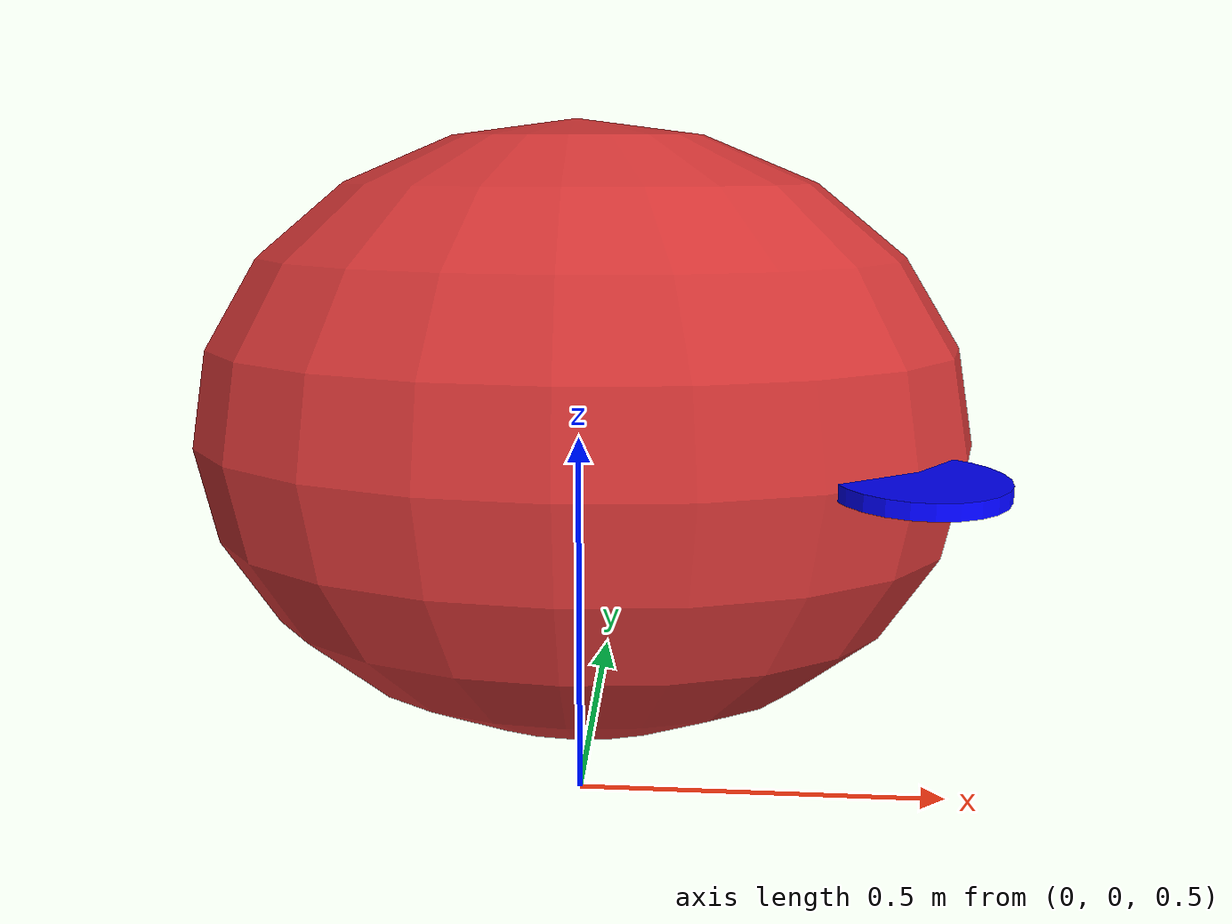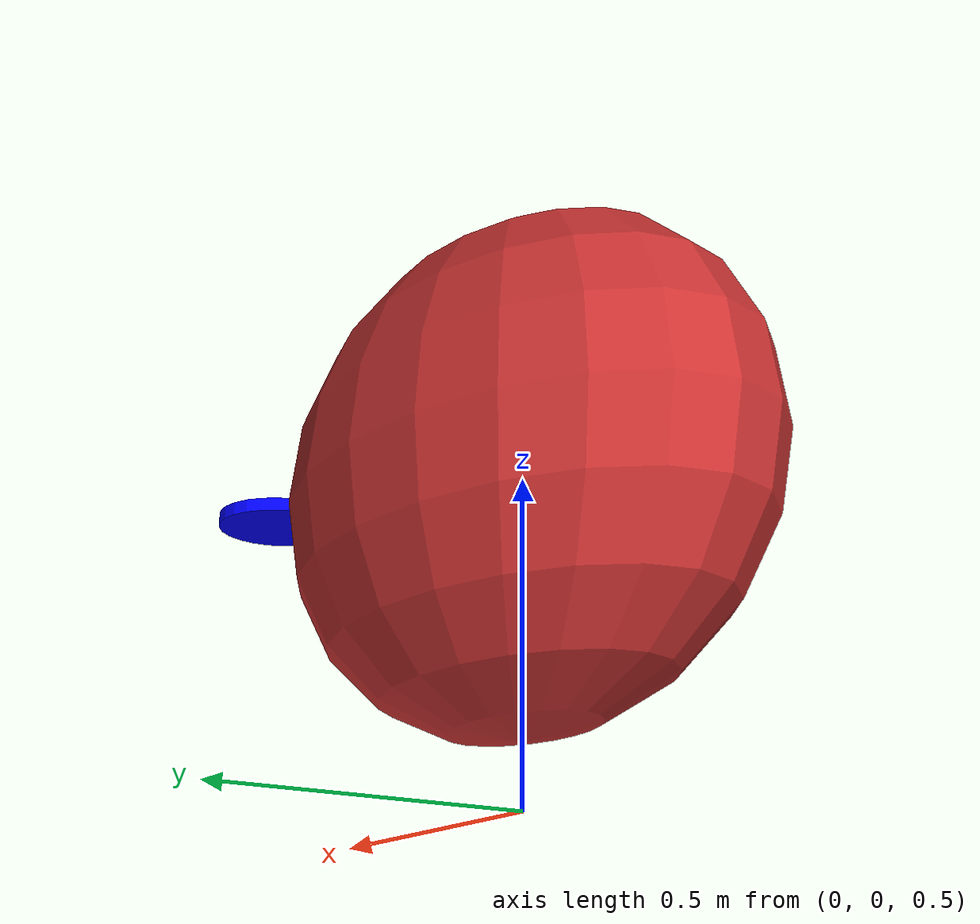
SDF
<?xml version="1.0" ?>
<sdf version="1.6">
  <model name="aerostate">
    <pose>0 0 1 0 0 0</pose>
    <link name="body">
      <inertial>
        <mass>0.3276</mass>
        <inertia>
          <ixx>0.1</ixx>
          <ixy>0</ixy>
          <ixz>0</ixz>
          <iyy>0.1</iyy>
          <iyz>0</iyz>
          <izz>0.1</izz>
        </inertia>
      </inertial>
      <collision name="collision">
        <geometry>
          <sphere>
            <radius>0.4</radius>
          </sphere>
        </geometry>
      </collision>
      <visual name="visual">
        <geometry>
          <ellipsoid>
            <radii>0.5 0.3 0.4</radii>
          </ellipsoid>
        </geometry>
        <material>
          <ambient>0.8 0.2 0.2 1</ambient>
          <diffuse>0.8 0.2 0.2 1</diffuse>
        </material>
      </visual>
      <sensor name="imu_sensor" type="imu">
        <always_on>1</always_on> <!-- Сенсор всегда включен (активен) -->
        <update_rate>100</update_rate> <!-- Частота обновления данных сенсора (Гц) -->
        <visualize>true</visualize> <!-- Визуализация сенсора в Gazebo (отображение оси координат) -->
        <topic>imu</topic> <!-- Топик, на который сенсор публикует данные -->
        <enable_metrics>true</enable_metrics> <!-- Включение метрик производительности сенсора (для отладки) -->
      </sensor>
    </link>
    <link name="camera_link">
    <pose>0 0 -0.2 0 1.57 0</pose>
    <inertial>
        <mass>0.001</mass>
        <inertia>
          <ixx>0.00001</ixx>
          <ixy>0</ixy>
          <ixz>0</ixz>
          <iyy>0.00001</iyy>
          <iyz>0</iyz>
          <izz>0.00001</izz>
        </inertia>
      </inertial>
      <collision name="collision">
        <geometry>
          <box>
            <size>0.05 0.05 0.05</size>
          </box>
        </geometry>
      </collision>
    <sensor name="downward_camera" type="camera">
      <camera>
        <horizontal_fov>1.047</horizontal_fov>
        <image>
          <width>320</width>
          <height>240</height>
        </image>
        <clip>
          <near>0.1</near>
          <far>100</far>
        </clip>
      </camera>
      <always_on>true</always_on>
      <update_rate>30</update_rate>
      <visualize>true</visualize>
      <topic>camera</topic>
    </sensor>
  </link>
  <joint name="camera_joint" type="fixed">
    <parent>body</parent>
    <child>camera_link</child>
  </joint>
    <link name='rotor_0'>  <!-- Правый задний -->
    <pose>0.4 -0.2 0 0 0 0</pose>
    <inertial>
        <mass>0.001</mass>
        <inertia>
          <ixx>0.00001</ixx>
          <ixy>0</ixy>
          <ixz>0</ixz>
          <iyy>0.00001</iyy>
          <iyz>0</iyz>
          <izz>0.00001</izz>
        </inertia>
      </inertial>
      <collision name="collision">
        <geometry>
          <cylinder>
            <radius>0.1</radius>
            <length>0.02</length>
          </cylinder>
        </geometry>
      </collision>
      <visual name="rotor_0_visual">
        <geometry>
          <cylinder>
            <radius>0.1</radius>
            <length>0.02</length>
          </cylinder>
        </geometry>
        <material>
          <ambient>0 0 1 1</ambient>
        </material>
      </visual>
    </link>
    <joint name="rotor_0_joint" type="revolute">
      <parent>body</parent>
      <child>rotor_0</child>
      <axis>
        <xyz>0 1 0</xyz>
        <limit>
          <lower>-1e+16</lower>
          <upper>1e+16</upper>
        </limit>
      </axis>
    </joint>
    <link name='rotor_1'>  <!-- Левый задний -->
    <pose>0.4 0.2 0 0 0 0</pose>
      <inertial>
        <mass>0.001</mass>
        <inertia>
          <ixx>0.00001</ixx>
          <ixy>0</ixy>
          <ixz>0</ixz>
          <iyy>0.00001</iyy>
          <iyz>0</iyz>
          <izz>0.00001</izz>
        </inertia>
      </inertial>
      <collision name="collision">
        <geometry>
          <cylinder>
            <radius>0.1</radius>
            <length>0.02</length>
          </cylinder>
        </geometry>
      </collision>
      <visual name="rotor_1_visual">
        <geometry>
          <cylinder>
            <radius>0.1</radius>
            <length>0.02</length>
          </cylinder>
        </geometry>
        <material>
          <ambient>0 0 1 1</ambient>
        </material>
      </visual>
    </link>
    <joint name="rotor_1_joint" type="revolute">
      <parent>body</parent>
      <child>rotor_1</child>
      <axis>
        <xyz>0 1 0</xyz>
        <limit>
          <lower>-1e+16</lower>
          <upper>1e+16</upper>
        </limit>
      </axis>
    </joint>
	<link name='rotor_U'>  <!-- Верхний -->
    <pose>0 0 0.3 0 0 0</pose>
      <inertial>
        <mass>0.001</mass>
        <inertia>
          <ixx>0.00001</ixx>
          <ixy>0</ixy>
          <ixz>0</ixz>
          <iyy>0.00001</iyy>
          <iyz>0</iyz>
          <izz>0.00001</izz>
        </inertia>
      </inertial>
      <collision name="collision">
        <geometry>
          <cylinder>
            <radius>0.1</radius>
            <length>0.02</length>
          </cylinder>
        </geometry>
      </collision>
      <visual name="rotor_U_visual">
        <geometry>
          <cylinder>
            <radius>0.1</radius>
            <length>0.02</length>
          </cylinder>
        </geometry>
        <material>
          <ambient>0 0 1 1</ambient>
        </material>
      </visual>
    </link>
    <joint name="rotor_U_joint" type="revolute">
      <parent>body</parent>
      <child>rotor_U</child>
      <axis>
        <xyz>0 0 1</xyz>
        <limit>
          <lower>-1e+16</lower>
          <upper>1e+16</upper>
        </limit>
      </axis>
    </joint>
    <link name='rotor_D'>  <!-- Нижний -->
    <pose>0 0 -0.3 0 0 0</pose>
      <inertial>
        <mass>0.001</mass>
        <inertia>
          <ixx>0.00001</ixx>
          <ixy>0</ixy>
          <ixz>0</ixz>
          <iyy>0.00001</iyy>
          <iyz>0</iyz>
          <izz>0.00001</izz>
        </inertia>
      </inertial>
      <collision name="collision">
        <geometry>
          <cylinder>
            <radius>0.1</radius>
            <length>0.02</length>
          </cylinder>
        </geometry>
      </collision>
      <visual name="rotor_D_visual">
        <geometry>
          <cylinder>
            <radius>0.1</radius>
            <length>0.02</length>
          </cylinder>
        </geometry>
        <material>
          <ambient>0 0 1 1</ambient>
        </material>
      </visual>
    </link>
    <joint name="rotor_D_joint" type="revolute">
      <parent>body</parent>
      <child>rotor_D</child>
      <axis>
        <xyz>0 0 1</xyz>
        <limit>
          <lower>-1e+16</lower>
          <upper>1e+16</upper>
        </limit>
      </axis>
    </joint>
  </model>
</sdf>
